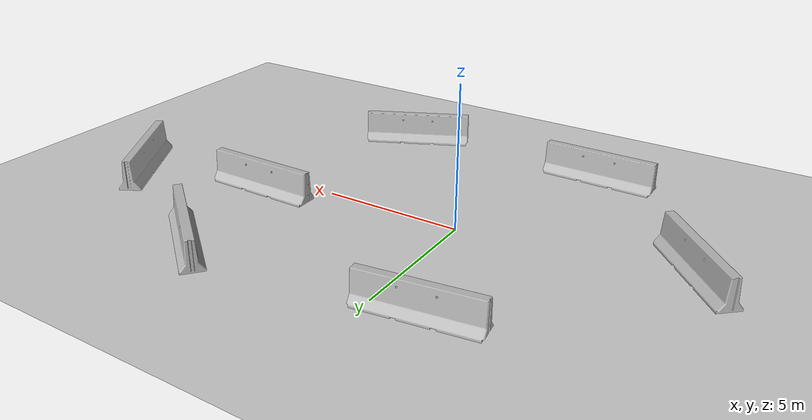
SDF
<sdf version="1.6">
 <world name="default">
  <light name="sun" type="directional">
   <pose>0 0 10 0 -0 0</pose>
   <diffuse>0.8 0.8 0.8 1</diffuse>
   <specular>0.2 0.2 0.2 1</specular>
   <attenuation>
    <range>1000</range>
    <constant>0.9</constant>
    <linear>0.01</linear>
    <quadratic>0.001</quadratic>
   </attenuation>
   <direction>-0.5 0.1 -0.9</direction>
  </light>
  <model name="ground_plane">
   <static>1</static>
   <link name="ground_plane::link">
    <collision name="collision">
     <geometry><plane><normal>0 0 1</normal><size>100 100</size></plane></geometry>
     <surface>
      <contact><collide_bitmask>65535</collide_bitmask></contact>
      <friction><ode><mu>100</mu><mu2>50</mu2></ode></friction>
     </surface>
    </collision>
    <visual name="visual">
     <cast_shadows>0</cast_shadows>
     <geometry><plane><normal>0 0 1</normal><size>100 100</size></plane></geometry>
     <material>
      <script><uri>file://media/materials/scripts/gazebo.material</uri><name>Gazebo/Grey</name></script>
     </material>
    </visual>
   </link>
  </model>
  <gravity>0 0 -9.8</gravity>
  <magnetic_field>6e-06 2.3e-05 -4.2e-05</magnetic_field>
  <atmosphere type="adiabatic"/>
  <physics name="default_physics" default="0" type="ode">
   <max_step_size>0.001</max_step_size>
   <real_time_factor>1</real_time_factor>
   <real_time_update_rate>1000</real_time_update_rate>
  </physics>
  <scene><ambient>0.4 0.4 0.4 1</ambient><background>0.7 0.7 0.7 1</background><shadows>1</shadows></scene>
  <audio><device>default</device></audio>
  <spherical_coordinates>
   <surface_model>EARTH_WGS84</surface_model>
   <latitude_deg>0</latitude_deg>
   <longitude_deg>0</longitude_deg>
   <elevation>0</elevation>
   <heading_deg>0</heading_deg>
  </spherical_coordinates>
  <model name="jersey_barrier">
   <static>1</static>
   <link name="link">
    <visual name="visual">
     <geometry><mesh><uri>model://jersey_barrier/meshes/jersey_barrier.dae</uri></mesh></geometry>
    </visual>
    <collision name="upright">
     <pose>0 0 0.5715 0 -0 0</pose>
     <geometry><box><size>4.06542 0.3063 1.143</size></box></geometry>
    </collision>
    <collision name="base">
     <pose>0 0 0.032258 0 -0 0</pose>
     <geometry><box><size>4.06542 0.8107 0.064516</size></box></geometry>
    </collision>
    <collision name="base2">
     <pose>0 0 0.1 0 -0 0</pose>
     <geometry><box><size>4.06542 0.65 0.1</size></box></geometry>
    </collision>
    <collision name="base3">
     <pose>0 0 0.2 0 -0 0</pose>
     <geometry><box><size>4.06542 0.5 0.1</size></box></geometry>
    </collision>
    <collision name="left-angle">
     <pose>0 -0.224 0.2401 0.9 -0 0</pose>
     <geometry><box><size>4.06542 0.5 0.064516</size></box></geometry>
    </collision>
    <collision name="right-angle">
     <pose>0 0.224 0.2401 -0.9 0 0</pose>
     <geometry><box><size>4.06542 0.5 0.064516</size></box></geometry>
    </collision>
   </link>
   <pose>5.05033 -5.94994 0 0 -0 0.45</pose>
  </model>
  <model name="jersey_barrier_0">
   <static>1</static>
   <link name="link">
    <visual name="visual">
     <geometry><mesh><uri>model://jersey_barrier/meshes/jersey_barrier.dae</uri></mesh></geometry>
    </visual>
    <collision name="upright">
     <pose>0 0 0.5715 0 -0 0</pose>
     <geometry><box><size>4.06542 0.3063 1.143</size></box></geometry>
    </collision>
    <collision name="base">
     <pose>0 0 0.032258 0 -0 0</pose>
     <geometry><box><size>4.06542 0.8107 0.064516</size></box></geometry>
    </collision>
    <collision name="base2">
     <pose>0 0 0.1 0 -0 0</pose>
     <geometry><box><size>4.06542 0.65 0.1</size></box></geometry>
    </collision>
    <collision name="base3">
     <pose>0 0 0.2 0 -0 0</pose>
     <geometry><box><size>4.06542 0.5 0.1</size></box></geometry>
    </collision>
    <collision name="left-angle">
     <pose>0 -0.224 0.2401 0.9 -0 0</pose>
     <geometry><box><size>4.06542 0.5 0.064516</size></box></geometry>
    </collision>
    <collision name="right-angle">
     <pose>0 0.224 0.2401 -0.9 0 0</pose>
     <geometry><box><size>4.06542 0.5 0.064516</size></box></geometry>
    </collision>
   </link>
   <pose>-2.54628 -6.16278 0 0 -0 0</pose>
  </model>
  <model name="jersey_barrier_1">
   <static>1</static>
   <link name="link">
    <visual name="visual">
     <geometry><mesh><uri>model://jersey_barrier/meshes/jersey_barrier.dae</uri></mesh></geometry>
    </visual>
    <collision name="upright">
     <pose>0 0 0.5715 0 -0 0</pose>
     <geometry><box><size>4.06542 0.3063 1.143</size></box></geometry>
    </collision>
    <collision name="base">
     <pose>0 0 0.032258 0 -0 0</pose>
     <geometry><box><size>4.06542 0.8107 0.064516</size></box></geometry>
    </collision>
    <collision name="base2">
     <pose>0 0 0.1 0 -0 0</pose>
     <geometry><box><size>4.06542 0.65 0.1</size></box></geometry>
    </collision>
    <collision name="base3">
     <pose>0 0 0.2 0 -0 0</pose>
     <geometry><box><size>4.06542 0.5 0.1</size></box></geometry>
    </collision>
    <collision name="left-angle">
     <pose>0 -0.224 0.2401 0.9 -0 0</pose>
     <geometry><box><size>4.06542 0.5 0.064516</size></box></geometry>
    </collision>
    <collision name="right-angle">
     <pose>0 0.224 0.2401 -0.9 0 0</pose>
     <geometry><box><size>4.06542 0.5 0.064516</size></box></geometry>
    </collision>
   </link>
   <pose>6.77306 5.37323 0 0 0 -0.688208</pose>
  </model>
  <model name="jersey_barrier_2">
   <static>1</static>
   <link name="link">
    <visual name="visual">
     <geometry><mesh><uri>model://jersey_barrier/meshes/jersey_barrier.dae</uri></mesh></geometry>
    </visual>
    <collision name="upright">
     <pose>0 0 0.5715 0 -0 0</pose>
     <geometry><box><size>4.06542 0.3063 1.143</size></box></geometry>
    </collision>
    <collision name="base">
     <pose>0 0 0.032258 0 -0 0</pose>
     <geometry><box><size>4.06542 0.8107 0.064516</size></box></geometry>
    </collision>
    <collision name="base2">
     <pose>0 0 0.1 0 -0 0</pose>
     <geometry><box><size>4.06542 0.65 0.1</size></box></geometry>
    </collision>
    <collision name="base3">
     <pose>0 0 0.2 0 -0 0</pose>
     <geometry><box><size>4.06542 0.5 0.1</size></box></geometry>
    </collision>
    <collision name="left-angle">
     <pose>0 -0.224 0.2401 0.9 -0 0</pose>
     <geometry><box><size>4.06542 0.5 0.064516</size></box></geometry>
    </collision>
    <collision name="right-angle">
     <pose>0 0.224 0.2401 -0.9 0 0</pose>
     <geometry><box><size>4.06542 0.5 0.064516</size></box></geometry>
    </collision>
   </link>
   <pose>-1.57611 4.93439 0 0 -0 0.137061</pose>
  </model>
  <model name="jersey_barrier_3">
   <static>1</static>
   <link name="link">
    <visual name="visual">
     <geometry><mesh><uri>model://jersey_barrier/meshes/jersey_barrier.dae</uri></mesh></geometry>
    </visual>
    <collision name="upright">
     <pose>0 0 0.5715 0 -0 0</pose>
     <geometry><box><size>4.06542 0.3063 1.143</size></box></geometry>
    </collision>
    <collision name="base">
     <pose>0 0 0.032258 0 -0 0</pose>
     <geometry><box><size>4.06542 0.8107 0.064516</size></box></geometry>
    </collision>
    <collision name="base2">
     <pose>0 0 0.1 0 -0 0</pose>
     <geometry><box><size>4.06542 0.65 0.1</size></box></geometry>
    </collision>
    <collision name="base3">
     <pose>0 0 0.2 0 -0 0</pose>
     <geometry><box><size>4.06542 0.5 0.1</size></box></geometry>
    </collision>
    <collision name="left-angle">
     <pose>0 -0.224 0.2401 0.9 -0 0</pose>
     <geometry><box><size>4.06542 0.5 0.064516</size></box></geometry>
    </collision>
    <collision name="right-angle">
     <pose>0 0.224 0.2401 -0.9 0 0</pose>
     <geometry><box><size>4.06542 0.5 0.064516</size></box></geometry>
    </collision>
   </link>
   <pose>-7.33679 -1.37947 0 0 0 -0.835945</pose>
  </model>
  <model name="jersey_barrier_4">
   <static>1</static>
   <link name="link">
    <visual name="visual">
     <geometry><mesh><uri>model://jersey_barrier/meshes/jersey_barrier.dae</uri></mesh></geometry>
    </visual>
    <collision name="upright">
     <pose>0 0 0.5715 0 -0 0</pose>
     <geometry><box><size>4.06542 0.3063 1.143</size></box></geometry>
    </collision>
    <collision name="base">
     <pose>0 0 0.032258 0 -0 0</pose>
     <geometry><box><size>4.06542 0.8107 0.064516</size></box></geometry>
    </collision>
    <collision name="base2">
     <pose>0 0 0.1 0 -0 0</pose>
     <geometry><box><size>4.06542 0.65 0.1</size></box></geometry>
    </collision>
    <collision name="base3">
     <pose>0 0 0.2 0 -0 0</pose>
     <geometry><box><size>4.06542 0.5 0.1</size></box></geometry>
    </collision>
    <collision name="left-angle">
     <pose>0 -0.224 0.2401 0.9 -0 0</pose>
     <geometry><box><size>4.06542 0.5 0.064516</size></box></geometry>
    </collision>
    <collision name="right-angle">
     <pose>0 0.224 0.2401 -0.9 0 0</pose>
     <geometry><box><size>4.06542 0.5 0.064516</size></box></geometry>
    </collision>
   </link>
   <pose>7.26932 1.08536 0 0 -0 0</pose>
  </model>
  <model name="jersey_barrier_clone">
   <static>1</static>
   <link name="link">
    <visual name="visual">
     <geometry><mesh><uri>model://jersey_barrier/meshes/jersey_barrier.dae</uri></mesh></geometry>
    </visual>
    <collision name="upright">
     <pose>0 0 0.5715 0 -0 0</pose>
     <geometry><box><size>4.06542 0.3063 1.143</size></box></geometry>
    </collision>
    <collision name="base">
     <pose>0 0 0.032258 0 -0 0</pose>
     <geometry><box><size>4.06542 0.8107 0.064516</size></box></geometry>
    </collision>
    <collision name="base2">
     <pose>0 0 0.1 0 -0 0</pose>
     <geometry><box><size>4.06542 0.65 0.1</size></box></geometry>
    </collision>
    <collision name="base3">
     <pose>0 0 0.2 0 -0 0</pose>
     <geometry><box><size>4.06542 0.5 0.1</size></box></geometry>
    </collision>
    <collision name="left-angle">
     <pose>0 -0.224 0.2401 0.9 -0 0</pose>
     <geometry><box><size>4.06542 0.5 0.064516</size></box></geometry>
    </collision>
    <collision name="right-angle">
     <pose>0 0.224 0.2401 -0.9 0 0</pose>
     <geometry><box><size>4.06542 0.5 0.064516</size></box></geometry>
    </collision>
   </link>
   <pose>12.2242 2.02414 0 0 0 -1.04455</pose>
  </model>
 </world>
</sdf>
